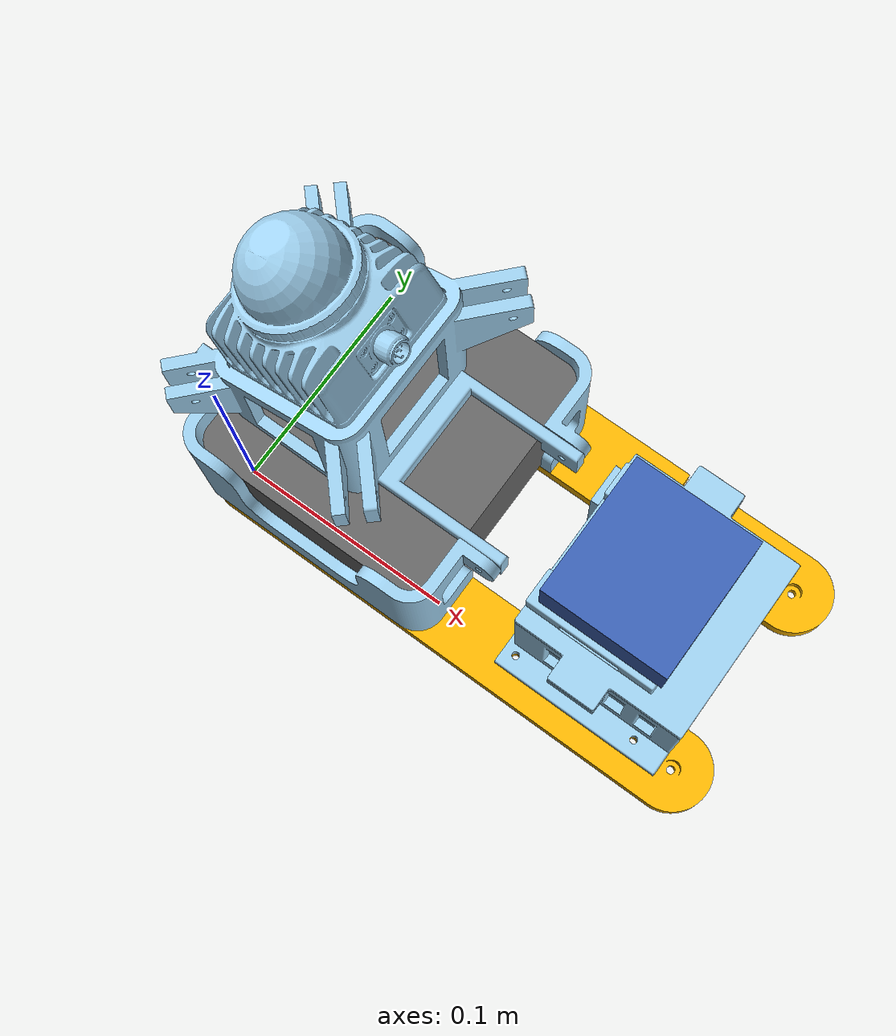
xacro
<robot xmlns:xacro="http://www.ros.org/wiki/xacro" name="onshape">
<!-- Generated using onshape-to-robot -->
    <!-- Link mid-360_lidar_unit -->
    <link name="nuc_top">
        <inertial>
            <origin xyz="0.0919709 0.0455289 0.0500946" rpy="0 0 0"/>
            <mass value="1.44797"/>
            <inertia ixx="0.00341863" ixy="7.45764e-05" ixz="0.00146802" iyy="0.00992739" iyz="-1.65902e-05" izz="0.00842917"/>
        </inertial>
        <!-- Part mid-360_lidar_unit -->
        <visual>
            <origin xyz="0.0240064 0.0460004 0.106664" rpy="6.12323e-17 -0.383972 -6.93889e-18"/>
            <geometry>
                <mesh filename="file://$(find legged_perceptive_description)/urdf/nuc_and_lidar/mid_360_lidar_unit.stl"/>
            </geometry>
            <material name="mid-360_lidar_unit_material">
                <color rgba="0.615686 0.811765 0.929412 1.0"/>
            </material>
        </visual>
        <collision>
            <origin xyz="0.0240064 0.0460004 0.106664" rpy="6.12323e-17 -0.383972 -6.93889e-18"/>
            <geometry>
                <mesh filename="file://$(find legged_perceptive_description)/urdf/nuc_and_lidar/mid_360_lidar_unit.stl"/>
            </geometry>
        </collision>
        <!-- Part voltageregulatormount -->
        <visual>
            <origin xyz="0.1705 0.046 0.049" rpy="1.01161e-46 -2.30521e-16 -3.14159"/>
            <geometry>
                <mesh filename="file://$(find legged_perceptive_description)/urdf/nuc_and_lidar/voltageregulatormount.stl"/>
            </geometry>
            <material name="voltageregulatormount_material">
                <color rgba="0.615686 0.811765 0.929412 1.0"/>
            </material>
        </visual>
        <collision>
            <origin xyz="0.1705 0.046 0.049" rpy="1.01161e-46 -2.30521e-16 -3.14159"/>
            <geometry>
                <mesh filename="file://$(find legged_perceptive_description)/urdf/nuc_and_lidar/voltageregulatormount.stl"/>
            </geometry>
        </collision>
        <!-- Part nuc -->
        <visual>
            <origin xyz="0.044 0.046 0.05" rpy="3.14159 -0 -1.5708"/>
            <geometry>
                <mesh filename="file://$(find legged_perceptive_description)/urdf/nuc_and_lidar/nuc.stl"/>
            </geometry>
            <material name="nuc_material">
                <color rgba="0.4 0.4 0.4 1.0"/>
            </material>
        </visual>
        <collision>
            <origin xyz="0.044 0.046 0.05" rpy="3.14159 -0 -1.5708"/>
            <geometry>
                <mesh filename="file://$(find legged_perceptive_description)/urdf/nuc_and_lidar/nuc.stl"/>
            </geometry>
        </collision>
        <!-- Part nuc_enclosure_side -->
        <visual>
            <origin xyz="0.1175 0.092 -2.60209e-18" rpy="0 -0 3.14159"/>
            <geometry>
                <mesh filename="file://$(find legged_perceptive_description)/urdf/nuc_and_lidar/nuc_enclosure_side.stl"/>
            </geometry>
            <material name="nuc_enclosure_side_material">
                <color rgba="0.615686 0.811765 0.929412 1.0"/>
            </material>
        </visual>
        <collision>
            <origin xyz="0.1175 0.092 -2.60209e-18" rpy="0 -0 3.14159"/>
            <geometry>
                <mesh filename="file://$(find legged_perceptive_description)/urdf/nuc_and_lidar/nuc_enclosure_side.stl"/>
            </geometry>
        </collision>
        <!-- Part nuc_enclosure_side_2 -->
        <visual>
            <origin xyz="-0.0305 5.58794e-11 0" rpy="0 -0 0"/>
            <geometry>
                <mesh filename="file://$(find legged_perceptive_description)/urdf/nuc_and_lidar/nuc_enclosure_side.stl"/>
            </geometry>
            <material name="nuc_enclosure_side_2_material">
                <color rgba="0.615686 0.811765 0.929412 1.0"/>
            </material>
        </visual>
        <collision>
            <origin xyz="-0.0305 5.58794e-11 0" rpy="0 -0 0"/>
            <geometry>
                <mesh filename="file://$(find legged_perceptive_description)/urdf/nuc_and_lidar/nuc_enclosure_side.stl"/>
            </geometry>
        </collision>
        <!-- Part mounting_rail -->
        <visual>
            <origin xyz="0.10975 0.0745 -2.60209e-18" rpy="-6.16298e-33 -1.2326e-32 -2.77556e-17"/>
            <geometry>
                <mesh filename="file://$(find legged_perceptive_description)/urdf/nuc_and_lidar/mounting_rail.stl"/>
            </geometry>
            <material name="mounting_rail_material">
                <color rgba="0.980392 0.713725 0.00392157 1.0"/>
            </material>
        </visual>
        <collision>
            <origin xyz="0.10975 0.0745 -2.60209e-18" rpy="-6.16298e-33 -1.2326e-32 -2.77556e-17"/>
            <geometry>
                <mesh filename="file://$(find legged_perceptive_description)/urdf/nuc_and_lidar/mounting_rail.stl"/>
            </geometry>
        </collision>
        <!-- Part psu -->
        <visual>
            <origin xyz="0.169134 0.046 0.063" rpy="-2.30521e-16 -1.01161e-46 -1.5708"/>
            <geometry>
                <mesh filename="file://$(find legged_perceptive_description)/urdf/nuc_and_lidar/psu.stl"/>
            </geometry>
            <material name="psu_material">
                <color rgba="0.231373 0.380392 0.705882 1.0"/>
            </material>
        </visual>
        <collision>
            <origin xyz="0.169134 0.046 0.063" rpy="-2.30521e-16 -1.01161e-46 -1.5708"/>
            <geometry>
                <mesh filename="file://$(find legged_perceptive_description)/urdf/nuc_and_lidar/psu.stl"/>
            </geometry>
        </collision>
        <!-- Part battery -->
        <visual>
            <origin xyz="0.1725 0.008 0.026" rpy="-1.5708 2.30521e-16 0"/>
            <geometry>
                <mesh filename="file://$(find legged_perceptive_description)/urdf/nuc_and_lidar/battery.stl"/>
            </geometry>
            <material name="battery_material">
                <color rgba="0.615686 0.811765 0.929412 1.0"/>
            </material>
        </visual>
        <collision>
            <origin xyz="0.1725 0.008 0.026" rpy="-1.5708 2.30521e-16 0"/>
            <geometry>
                <mesh filename="file://$(find legged_perceptive_description)/urdf/nuc_and_lidar/battery.stl"/>
            </geometry>
        </collision>
        <!-- Part frame -->
        <visual>
            <origin xyz="0.0045316 0.0460605 0.154866" rpy="3.14159 0.383972 3.14159"/>
            <geometry>
                <mesh filename="file://$(find legged_perceptive_description)/urdf/nuc_and_lidar/frame.stl"/>
            </geometry>
            <material name="frame_material">
                <color rgba="0.615686 0.811765 0.929412 1.0"/>
            </material>
        </visual>
        <collision>
            <origin xyz="0.0045316 0.0460605 0.154866" rpy="3.14159 0.383972 3.14159"/>
            <geometry>
                <mesh filename="file://$(find legged_perceptive_description)/urdf/nuc_and_lidar/frame.stl"/>
            </geometry>
        </collision>
        <!-- Part mounting_rail_2 -->
        <visual>
            <origin xyz="0.10975 -0.0175 0" rpy="0 -0 0"/>
            <geometry>
                <mesh filename="file://$(find legged_perceptive_description)/urdf/nuc_and_lidar/mounting_rail.stl"/>
            </geometry>
            <material name="mounting_rail_2_material">
                <color rgba="0.980392 0.713725 0.00392157 1.0"/>
            </material>
        </visual>
        <collision>
            <origin xyz="0.10975 -0.0175 0" rpy="0 -0 0"/>
            <geometry>
                <mesh filename="file://$(find legged_perceptive_description)/urdf/nuc_and_lidar/mounting_rail.stl"/>
            </geometry>
        </collision>
        <!-- Part part_1 -->
        <visual>
            <origin xyz="0.0435 0.0745 0.0515" rpy="3.14159 1.15074e-31 3.14159"/>
            <geometry>
                <mesh filename="file://$(find legged_perceptive_description)/urdf/nuc_and_lidar/part_1.stl"/>
            </geometry>
            <material name="part_1_material">
                <color rgba="0.615686 0.811765 0.929412 1.0"/>
            </material>
        </visual>
        <collision>
            <origin xyz="0.0435 0.0745 0.0515" rpy="3.14159 1.15074e-31 3.14159"/>
            <geometry>
                <mesh filename="file://$(find legged_perceptive_description)/urdf/nuc_and_lidar/part_1.stl"/>
            </geometry>
        </collision>
        <!-- Part batterymount -->
        <visual>
            <origin xyz="0.1745 0.046 -6.93889e-18" rpy="-2.30521e-16 -0 -1.5708"/>
            <geometry>
                <mesh filename="file://$(find legged_perceptive_description)/urdf/nuc_and_lidar/batterymount.stl"/>
            </geometry>
            <material name="batterymount_material">
                <color rgba="0.615686 0.811765 0.929412 1.0"/>
            </material>
        </visual>
        <collision>
            <origin xyz="0.1745 0.046 -6.93889e-18" rpy="-2.30521e-16 -0 -1.5708"/>
            <geometry>
                <mesh filename="file://$(find legged_perceptive_description)/urdf/nuc_and_lidar/batterymount.stl"/>
            </geometry>
        </collision>
    </link>
    <!-- Frame livox -->
    <link name="lidar_frame"/>
    <joint name="lidar_frame_joint" type="fixed">
        <parent link="nuc_top"/>
        <child link="lidar_frame"/>
        <origin xyz="0.0045316 0.0460605 0.154866" rpy="0 0.383972 3.14159"/>
    </joint>
    <link name="lidar_imu_frame"/>
    <joint name="lidar_imu_joint" type="fixed">
        <parent link="lidar_frame"/>
        <child link="lidar_imu_frame"/>
        <!-- Extrinsics: translation from lidar_frame and identity rotation -->
        <origin xyz="0.011 0.02329 -0.04412" rpy="0 0 0"/>
    </joint>
</robot>
